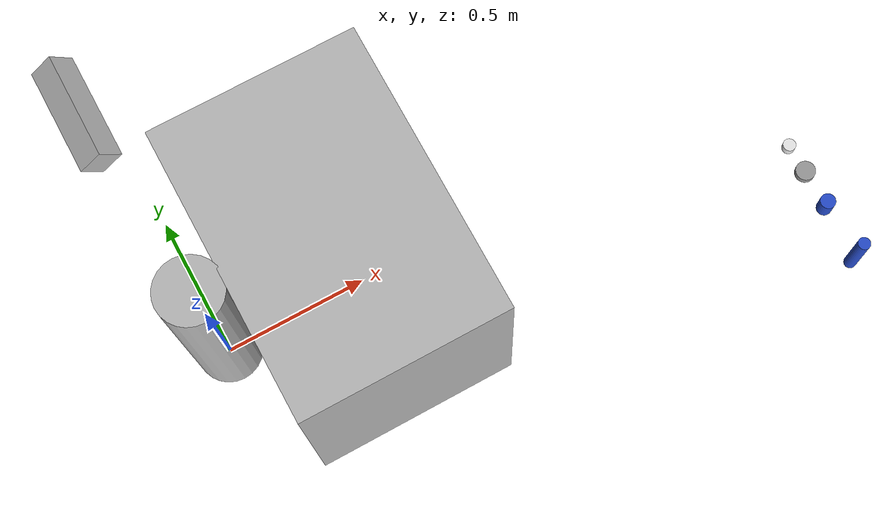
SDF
<sdf version="1.6">
 <world name="ur3_teleop">
  <gravity>0 0 -9.81</gravity>
  <physics name="default_physics" default="0" type="ode">
   <max_step_size>0.001</max_step_size>
   <real_time_factor>1</real_time_factor>
   <real_time_update_rate>1000</real_time_update_rate>
  </physics>
  <plugin name="ros_link_attacher_plugin" filename="libgazebo_ros_link_attacher.so"/>
  <scene><ambient>0.9 0.9 0.9 1</ambient><background>0.7 0.7 0.7 1</background><shadows>1</shadows></scene>
  <light name="sun" type="directional">
   <pose>0 0 10 0 -0 0</pose>
   <diffuse>1 1 1 1</diffuse>
   <specular>1 1 1 1</specular>
   <attenuation>
    <range>1000</range>
    <constant>0.9</constant>
    <linear>0.01</linear>
    <quadratic>0.001</quadratic>
   </attenuation>
   <direction>-0.5 0.1 -0.9</direction>
  </light>
  <model name="ur_base">
   <link name="ur3_base">
    <pose>0 0 0.39375 0 0 0</pose>
    <inertial>
     <mass>1</mass>
     <inertia><ixx>1</ixx><ixy>0</ixy><ixz>0</ixz><iyy>1</iyy><iyz>0</iyz><izz>1</izz></inertia>
    </inertial>
    <visual name="visual">
     <geometry><cylinder><length>0.7875</length><radius>0.11</radius></cylinder></geometry>
    </visual>
    <collision name="base_column">
     <geometry><cylinder><length>0.78</length><radius>0.11</radius></cylinder></geometry>
     <surface>
      <friction>
       <ode><mu>1</mu><mu2>1</mu2><fdir1>0 0 0</fdir1><slip1>0</slip1><slip2>0</slip2></ode>
       <torsional>
        <coefficient>1</coefficient>
        <patch_radius>0</patch_radius>
        <surface_radius>0</surface_radius>
        <use_patch_radius>1</use_patch_radius>
        <ode><slip>0</slip></ode>
       </torsional>
      </friction>
      <bounce><restitution_coefficient>0</restitution_coefficient><threshold>1e+06</threshold></bounce>
      <contact>
       <collide_without_contact>0</collide_without_contact>
       <collide_without_contact_bitmask>1</collide_without_contact_bitmask>
       <collide_bitmask>1</collide_bitmask>
       <ode>
        <soft_cfm>0</soft_cfm>
        <soft_erp>0.2</soft_erp>
        <kp>1e+13</kp>
        <kd>1</kd>
        <max_vel>0.01</max_vel>
        <min_depth>0</min_depth>
       </ode>
       <bullet>
        <split_impulse>1</split_impulse>
        <split_impulse_penetration_threshold>-0.01</split_impulse_penetration_threshold>
        <soft_cfm>0</soft_cfm>
        <soft_erp>0.2</soft_erp>
        <kp>1e+13</kp>
        <kd>1</kd>
       </bullet>
      </contact>
     </surface>
    </collision>
   </link>
   <static>1</static>
  </model>
  <model name="table">
   <link name="table::link">
    <pose>0.45 0 0.39375 0 0 0</pose>
    <inertial>
     <mass>1</mass>
     <inertia><ixx>1</ixx><ixy>0</ixy><ixz>0</ixz><iyy>1</iyy><iyz>0</iyz><izz>1</izz></inertia>
    </inertial>
    <visual name="visual">
     <geometry><box><size>0.7 1 0.7875</size></box></geometry>
     <material><shader type="pixel"><normal_map>__default__</normal_map></shader></material>
    </visual>
    <collision name="column">
     <pose>0 0 0.37 0 -0 0</pose>
     <geometry><box><size>0.7 1 0.7875</size></box></geometry>
     <surface>
      <friction>
       <ode><mu>1</mu><mu2>1</mu2><fdir1>0 0 0</fdir1><slip1>0</slip1><slip2>0</slip2></ode>
       <torsional>
        <coefficient>1</coefficient>
        <patch_radius>0</patch_radius>
        <surface_radius>0</surface_radius>
        <use_patch_radius>1</use_patch_radius>
        <ode><slip>0</slip></ode>
       </torsional>
      </friction>
      <bounce><restitution_coefficient>0</restitution_coefficient><threshold>1e+06</threshold></bounce>
      <contact>
       <collide_without_contact>0</collide_without_contact>
       <collide_without_contact_bitmask>1</collide_without_contact_bitmask>
       <collide_bitmask>1</collide_bitmask>
       <ode>
        <soft_cfm>0</soft_cfm>
        <soft_erp>0.2</soft_erp>
        <kp>1e+13</kp>
        <kd>1</kd>
        <max_vel>0.01</max_vel>
        <min_depth>0</min_depth>
       </ode>
       <bullet>
        <split_impulse>1</split_impulse>
        <split_impulse_penetration_threshold>-0.01</split_impulse_penetration_threshold>
        <soft_cfm>0</soft_cfm>
        <soft_erp>0.2</soft_erp>
        <kp>1e+13</kp>
        <kd>1</kd>
       </bullet>
      </contact>
     </surface>
    </collision>
   </link>
   <static>1</static>
  </model>
  <model name="kinect">
   <static>true</static>
   <pose>0 0.2 1.75 0 0.93 0</pose>
   <link name="link">
    <inertial><mass>0.1</mass></inertial>
    <collision name="collision"><geometry><box><size>0.073 0.276 0.072</size></box></geometry></collision>
    <visual name="visual"><geometry><box><size>0.073 0.276 0.072</size></box></geometry></visual>
    <sensor name="camera" type="depth">
     <update_rate>20</update_rate>
     <camera name="__default__">
      <horizontal_fov>1.0472</horizontal_fov>
      <image><width>640</width><height>480</height><format>R8G8B8</format></image>
      <clip><near>0.05</near><far>3</far></clip>
     </camera>
     <plugin name="camera_plugin" filename="libgazebo_ros_openni_kinect.so">
      <baseline>0.2</baseline>
      <alwaysOn>1</alwaysOn>
      <updateRate>0.0</updateRate>
      <cameraName>camera_ir</cameraName>
      <imageTopicName>/camera/color/image_raw</imageTopicName>
      <cameraInfoTopicName>/camera/color/camera_info</cameraInfoTopicName>
      <depthImageTopicName>/camera/depth/image_raw</depthImageTopicName>
      <depthImageCameraInfoTopicName>/camera/depth/camera_info</depthImageCameraInfoTopicName>
      <pointCloudTopicName>/camera/depth/points</pointCloudTopicName>
      <frameName>camera_link</frameName>
      <pointCloudCutoff>0.5</pointCloudCutoff>
      <pointCloudCutoffMax>3.0</pointCloudCutoffMax>
      <distortionK1>0</distortionK1>
      <distortionK2>0</distortionK2>
      <distortionK3>0</distortionK3>
      <distortionT1>0</distortionT1>
      <distortionT2>0</distortionT2>
      <CxPrime>0</CxPrime>
      <Cx>0</Cx>
      <Cy>0</Cy>
      <focalLength>0</focalLength>
      <hackBaseline>0</hackBaseline>
     </plugin>
    </sensor>
   </link>
  </model>
  <light name="user_directional_light_0" type="directional">
   <pose>0 0 10 0 -0 0</pose>
   <diffuse>1 1 1 1</diffuse>
   <specular>1 1 1 1</specular>
   <direction>0.1 0.1 -0.9</direction>
   <attenuation>
    <range>1000</range>
    <constant>0.5</constant>
    <linear>0.01</linear>
    <quadratic>0.001</quadratic>
   </attenuation>
  </light>
  <model name="steel_cylinder">
   <pose>1.85184 -0.4969 0.5 0 0 0</pose>
   <link name="link">
    <inertial>
     <mass>0.57</mass>
     <inertia>
      <ixx>0.00016913858424999996</ixx>
      <ixy>0</ixy>
      <ixz>0</ixz>
      <iyy>0.00016913858424999996</iyy>
      <iyz>0</iyz>
      <izz>0.00028802216849999995</izz>
     </inertia>
    </inertial>
    <collision name="collision">
     <geometry><cylinder><radius>0.03179</radius><length>0.023</length></cylinder></geometry>
    </collision>
    <visual name="visual">
     <geometry><cylinder><radius>0.03179</radius><length>0.023</length></cylinder></geometry>
     <material>
      <script><name>Gazebo/Grey</name><uri>file://media/materials/scripts/gazebo.material</uri></script>
     </material>
    </visual>
   </link>
  </model>
  <model name="uhm_cylinder">
   <pose>1.85184 -0.4 0.5 0 0 0</pose>
   <link name="link">
    <inertial>
     <mass>0.032</mass>
     <inertia>
      <ixx>5.5850311999999996e-06</ixx>
      <ixy>0</ixy>
      <ixz>0</ixz>
      <iyy>5.5850311999999996e-06</iyy>
      <iyz>0</iyz>
      <izz>6.7831696e-06</izz>
     </inertia>
    </inertial>
    <collision name="collision">
     <geometry><cylinder><radius>0.02059</radius><length>0.02858</length></cylinder></geometry>
    </collision>
    <visual name="visual">
     <geometry><cylinder><radius>0.02059</radius><length>0.02858</length></cylinder></geometry>
     <material>
      <script><name>Gazebo/White</name><uri>file://media/materials/scripts/gazebo.material</uri></script>
     </material>
    </visual>
   </link>
  </model>
  <model name="3d_cylinder">
   <pose>1.85184 -0.62 0.5 0 0 0</pose>
   <link name="link">
    <inertial>
     <mass>0.038</mass>
     <inertia>
      <ixx>2.1118068066666666e-05</ixx>
      <ixy>0</ixy>
      <ixz>0</ixz>
      <iyy>2.1118068066666666e-05</iyy>
      <iyz>0</iyz>
      <izz>1.159171e-05</izz>
     </inertia>
    </inertial>
    <collision name="collision">
     <geometry><cylinder><radius>0.0247</radius><length>0.06956</length></cylinder></geometry>
    </collision>
    <visual name="visual">
     <geometry><cylinder><radius>0.0247</radius><length>0.06956</length></cylinder></geometry>
     <material>
      <script><name>Gazebo/Blue</name><uri>file://media/materials/scripts/gazebo.material</uri></script>
     </material>
    </visual>
   </link>
  </model>
  <model name="destornillador">
   <pose>1.85184 -0.8 0.5 0 0 0</pose>
   <link name="link">
    <inertial>
     <mass>0.071</mass>
     <inertia>
      <ixx>0.00026300078144166663</ixx>
      <ixy>0</ixy>
      <ixz>0</ixz>
      <iyy>0.00026300078144166663</iyy>
      <iyz>0</iyz>
      <izz>1.4044229550000002e-05</izz>
     </inertia>
    </inertial>
    <collision name="collision">
     <geometry><cylinder><radius>0.01989</radius><length>0.208</length></cylinder></geometry>
    </collision>
    <visual name="visual">
     <geometry><cylinder><radius>0.01989</radius><length>0.208</length></cylinder></geometry>
     <material>
      <script><name>Gazebo/Blue</name><uri>file://media/materials/scripts/gazebo.material</uri></script>
     </material>
    </visual>
   </link>
  </model>
 </world>
</sdf>
